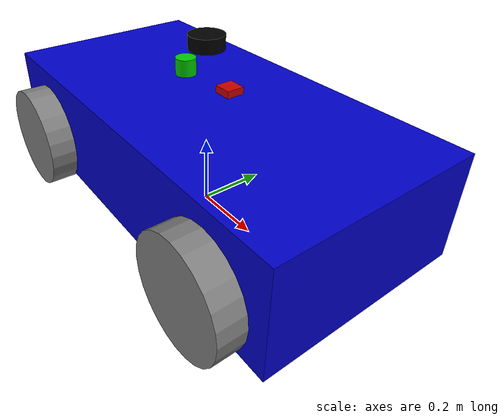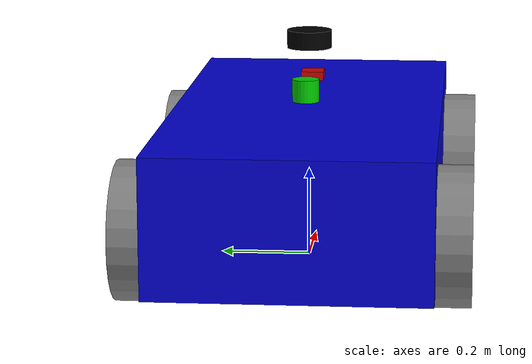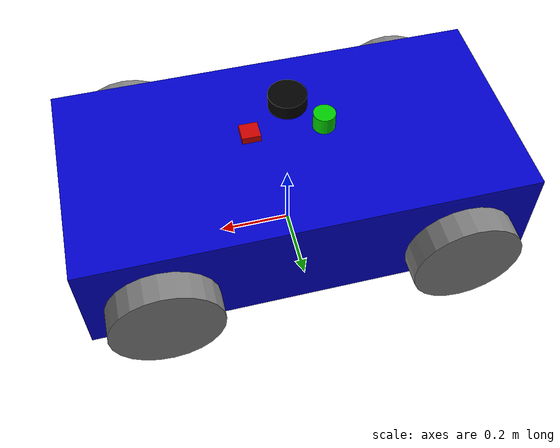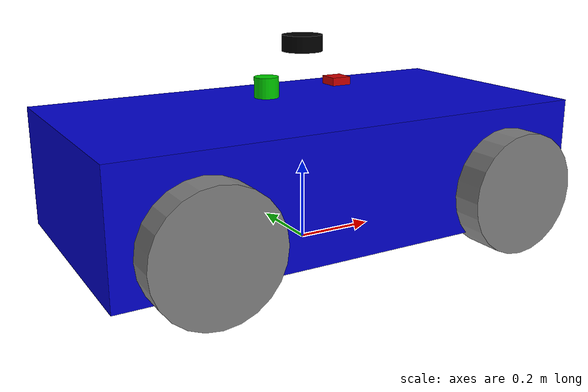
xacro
<?xml version="1.0"?>
<robot xmlns:xacro="http://www.ros.org/wiki/xacro" name="vehicle">

  <xacro:property name="base_width" value="0.6"/>
  <xacro:property name="base_length" value="1.2"/>
  <xacro:property name="base_height" value="0.3"/>
  <xacro:property name="wheel_radius" value="0.15"/>
  <xacro:property name="wheel_width" value="0.1"/>
  <xacro:property name="wheel_ygap" value="0.025"/>
  <xacro:property name="wheel_zoff" value="0.05"/>
  <xacro:property name="wheel_xoff" value="0.4"/>

  <!-- Define inertial property macros  -->
  <xacro:macro name="box_inertia" params="m w h d">
    <inertial>
      <origin xyz="0 0 0" rpy="${pi/2} 0 ${pi/2}"/>
      <mass value="${m}"/>
      <inertia ixx="${(m/12) * (h*h + d*d)}" ixy="0.0" ixz="0.0" iyy="${(m/12) * (w*w + d*d)}" iyz="0.0" izz="${(m/12) * (w*w + h*h)}"/>
    </inertial>
  </xacro:macro>

  <xacro:macro name="cylinder_inertia" params="m r h">
    <inertial>
      <origin xyz="0 0 0" rpy="${pi/2} 0 0" />
      <mass value="${m}"/>
      <inertia ixx="${(m/12) * (3*r*r + h*h)}" ixy = "0" ixz = "0" iyy="${(m/12) * (3*r*r + h*h)}" iyz = "0" izz="${(m/2) * (r*r)}"/>
    </inertial>
  </xacro:macro>

  <xacro:macro name="sphere_inertia" params="m r">
    <inertial>
      <mass value="${m}"/>
      <inertia ixx="${(2/5) * m * (r*r)}" ixy="0.0" ixz="0.0" iyy="${(2/5) * m * (r*r)}" iyz="0.0" izz="${(2/5) * m * (r*r)}"/>
    </inertial>
  </xacro:macro>

  <!-- Robot base -->
  <link name="base_link">
    <visual>
      <geometry>
        <box size="${base_length} ${base_width} ${base_height}"/>
      </geometry>
      <material name="Blue">
        <color rgba="0.0 0.0 0.8 1.0"/>
      </material>
    </visual>
    <collision>
      <geometry>
        <box size="${base_length} ${base_width} ${base_height}"/>
      </geometry>
    </collision>
    <xacro:box_inertia m="15" w="${base_width}" d="${base_length}" h="${base_height}"/>
  </link>

  <!-- Robot footprint -->
  <link name="base_footprint"/>

  <joint name="base_joint" type="fixed">
    <parent link="base_footprint"/>
    <child link="base_link"/>
    <origin xyz="0.0 0.0 ${(wheel_radius+wheel_zoff)}" rpy="0 0 0"/>
  </joint>

  <!-- Wheels -->
  <xacro:macro name="wheel" params="prefix x_reflect y_reflect">
    <link name="${prefix}_link">
      <visual>
        <origin xyz="0 0 0" rpy="${pi/2} 0 0"/>
        <geometry>
            <cylinder radius="${wheel_radius}" length="${wheel_width}"/>
        </geometry>
        <material name="Gray">
          <color rgba="0.5 0.5 0.5 1.0"/>
        </material>
      </visual>
      <collision>
        <origin xyz="0 0 0" rpy="${pi/2} 0 0"/>
        <geometry>
          <cylinder radius="${wheel_radius}" length="${wheel_width}"/>
        </geometry>
      </collision>
      <xacro:cylinder_inertia m="0.5" r="${wheel_radius}" h="${wheel_width}"/>
    </link>

    <joint name="${prefix}_joint" type="continuous">
      <parent link="base_link"/>
      <child link="${prefix}_link"/>
      <origin xyz="${x_reflect*wheel_xoff} ${y_reflect*(base_width/2+wheel_ygap)} ${-wheel_zoff}" rpy="0 0 0"/>
      <axis xyz="0 1 0"/>
    </joint>
  </xacro:macro>

  <xacro:wheel prefix="drivewhl_l" x_reflect="-1" y_reflect="1" />
  <xacro:wheel prefix="drivewhl_r" x_reflect="-1" y_reflect="-1" />
  <xacro:wheel prefix="front_l" x_reflect="1" y_reflect="1" />
  <xacro:wheel prefix="front_r" x_reflect="1" y_reflect="-1" />

  <!-- IMU -->
  <link name="imu_link">
    <visual>
      <geometry>
        <box size="0.05 0.05 0.02"/>
      </geometry>
      <material name="Red">
        <color rgba="0.8 0.0 0.0 1.0"/>
      </material>
    </visual>
    <collision>
      <geometry>
        <box size="0.05 0.05 0.02"/>
      </geometry>
    </collision>
    <xacro:box_inertia m="0.1" w="0.05" d="0.05" h="0.02"/>
  </link>

  <joint name="imu_joint" type="fixed">
    <parent link="base_link"/>
    <child link="imu_link"/>
    <origin xyz="0.1 0 0.2" rpy="0 0 0"/>
  </joint>

  <!-- GPS -->
  <link name="gps_link">
    <visual>
      <geometry>
        <cylinder radius="0.03" length="0.05"/>
      </geometry>
      <material name="Green">
        <color rgba="0.0 0.8 0.0 1.0"/>
      </material>
    </visual>
    <collision>
      <geometry>
        <cylinder radius="0.03" length="0.05"/>
      </geometry>
    </collision>
    <xacro:cylinder_inertia m="0.05" r="0.03" h="0.05"/>
  </link>

  <joint name="gps_joint" type="fixed">
    <parent link="base_link"/>
    <child link="gps_link"/>
    <origin xyz="-0.1 0 0.2" rpy="0 0 0"/>
  </joint>

  <!-- Lidar -->
  <link name="laser">
    <visual>
      <geometry>
        <cylinder radius="0.05" length="0.04"/>
      </geometry>
      <material name="Black">
        <color rgba="0.0 0.0 0.0 1.0"/>
      </material>
    </visual>
    <collision>
      <geometry>
        <cylinder radius="0.05" length="0.04"/>
      </geometry>
    </collision>
    <xacro:cylinder_inertia m="0.1" r="0.05" h="0.04"/>
  </link>

  <joint name="laser_joint" type="fixed">
    <parent link="base_link"/>
    <child link="laser"/>
    <origin xyz="0 0 0.3" rpy="0 0 0"/>
  </joint>

</robot>
